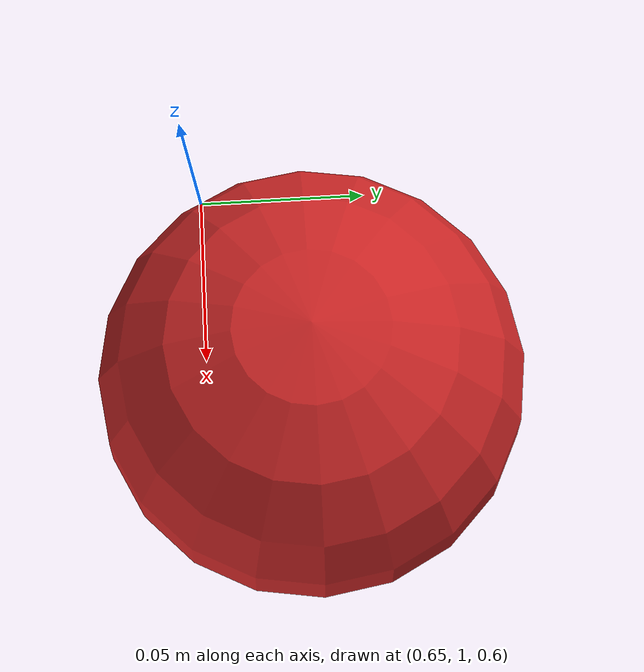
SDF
<?xml version="1.0" ?>
<sdf version="1.4">
  <world name="world">
    <include>
      <uri>model://ground_plane</uri>
    </include>
    <include>
      <uri>model://sun</uri>
    </include>

    <light name='sun' type='directional'>
      <cast_shadows>1</cast_shadows>
      <pose>0 0 10 0 -0 0</pose>
      <diffuse>0.8 0.8 0.8 1</diffuse>
      <specular>0.2 0.2 0.2 1</specular>
      <attenuation>
        <range>1000</range>
        <constant>0.9</constant>
        <linear>0.01</linear>
        <quadratic>0.001</quadratic>
      </attenuation>
      <direction>-0.5 0.1 -0.9</direction>
    </light>

   <model name='object'>
      <pose>0.72 1.03 0.65 0 -0 0</pose>
      <link name='link'>
        <inertial>
          <mass>0.1</mass>
          <inertia>
            <ixx>1</ixx>
            <ixy>0</ixy>
            <ixz>0</ixz>
            <iyy>1</iyy>
            <iyz>0</iyz>
            <izz>1</izz>
          </inertia>
        </inertial>
        <collision name='collision_object'>
          <geometry>
            <sphere>
              <radius>0.1</radius>
            </sphere>
          </geometry>
          <max_contacts>10</max_contacts>
          <surface>
            <bounce/>
            <friction>
              <ode/>
            </friction>
            <contact>
              <ode/>
            </contact>
          </surface>
        </collision>
        <visual name='visual_object'>
          <geometry>
            <sphere>
              <radius>0.05</radius>
            </sphere>
          </geometry>
          <material>
            <script>
              <uri>file://media/materials/scripts/gazebo.material</uri>
              <name>Gazebo/Red</name>
            </script>
          </material>
        </visual>

        <gravity>0</gravity>
      </link>
    </model>
</world>
</sdf>
